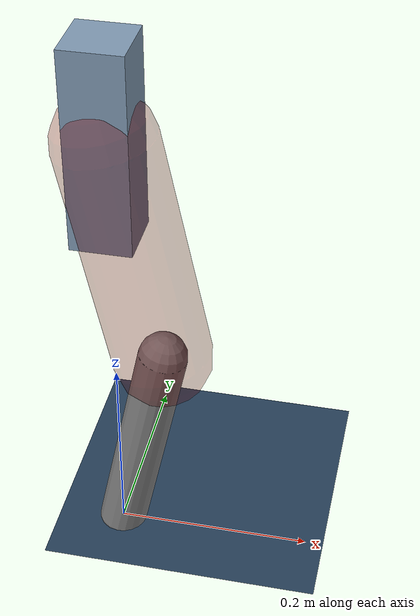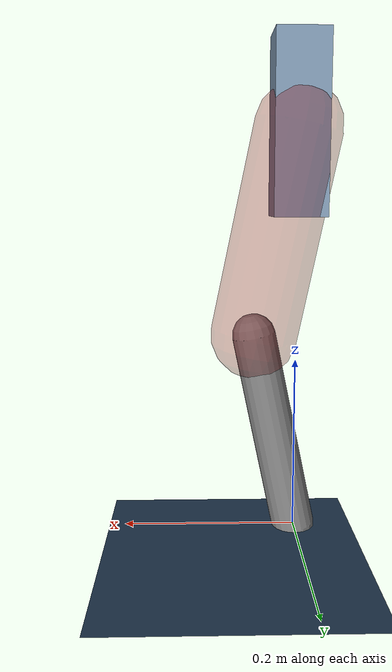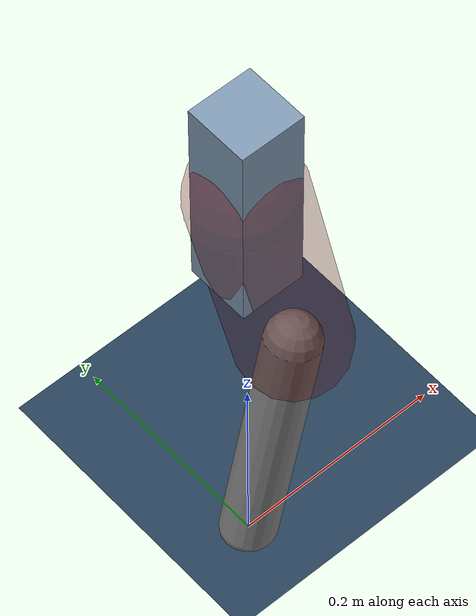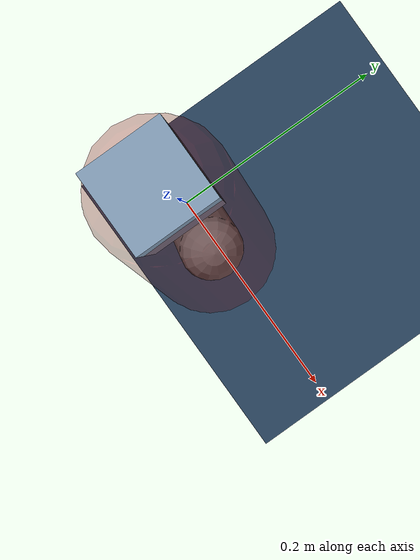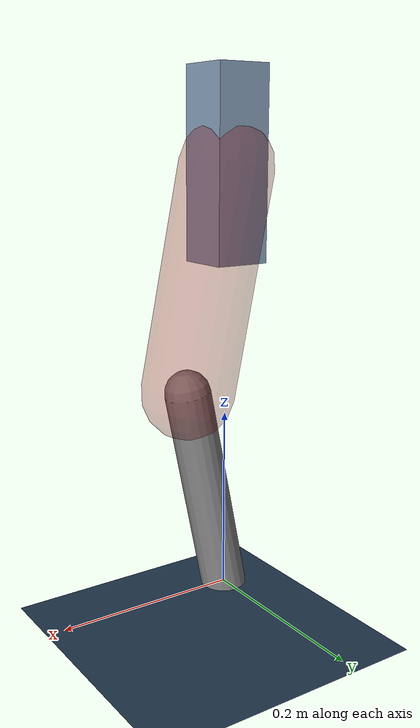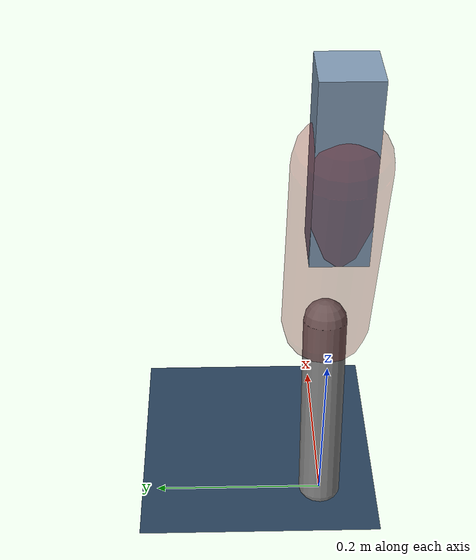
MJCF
<mujoco model="Hopper2D">
	<compiler inertiafromgeom="true" angle="radian" />
	<option timestep="0.001" integrator="implicit" cone="elliptic" solver="Newton" tolerance="1e-10" />

	<default>
		<geom contype="1" conaffinity="1" condim="3" friction="2 0.005 0.0001" solref="0.005 1" />
		<joint limited="true" damping="0.1" />
	</default>

	<asset>
		<texture name="skybox" type="skybox" builtin="gradient" rgb1=".4 .6 .8" rgb2="0 0 0" width="800" height="800" />
		<texture name="grid" type="2d" builtin="checker" rgb1=".1 .2 .3" rgb2=".2 .3 .4" width="300" height="300" mark="edge" markrgb=".2 .3 .4" />
		<material name="ground" texture="grid" texrepeat="1 1" texuniform="true" reflectance="0.1" />
		<material name="leg" rgba="0.5 0.6 0.7 1" />
	</asset>

	<worldbody>

		<geom name="floor" type="plane" size="5 5 0.25" material="ground" />

		<light directional="false" diffuse="0.8 0.8 0.8" specular="0.3 0.3 0.3" pos="0 0 2" dir="0 0 -1" />
		<light mode="targetbodycom" target="base" directional="false" diffuse="0.8 0.8 0.8" specular="0.3 0.3 0.3" pos="0 0 2" dir="0 0 -1" />

		<camera name="fixed" pos="0 -2 1" xyaxes="1 0 0 0 0 1" />
		<camera name="tracking" mode="trackcom" pos="0 -3 1" />

		<body name="root" pos="0 0 0.46624894867217426">
			<joint name="slide_x" type="slide" axis="1 0 0" range="-100 100" />
			<joint name="slide_z" type="slide" axis="0 0 1" range="0 10" />

			<body name="base" pos="0 0 0">
				<geom name="torso" type="box" size="0.03 0.03 0.1" mass="2.319" material="leg" />

				<body name="link1" pos="0 0 0" euler="0 1.3680378903028998 0">
					<joint type="hinge" axis="0 -1 0" pos="0 0 0" name="hinge1" limited="true" range="-3.14 3.14" stiffness="0" damping="0.1" />
					<geom name="thigh" type="capsule" fromto="0 0 0 0.24103341476286166 0 0" size="0.05" rgba="0.5 0 0 0.3" mass="0.8332835369071542" />

					<body name="link2" pos="0.24103341476286166 0 0" euler="0 0.4106045085441344 0">
						<joint type="hinge" axis="0 -1 0" pos="0 0 0" name="hinge2" limited="true" range="-3.14 3.14" stiffness="0" damping="0.1" />
						<geom name="shank" type="capsule" fromto="0 0 0 0.2352155339093126 0 0" size="0.025" mass="0.43029398051838136" />

					</body>
				</body>
			</body>
		</body>
	</worldbody>

	<actuator>
		<motor name="torque1" joint="hinge1" ctrlrange="-30.949951621899604 30.949951621899604" ctrllimited="true" gear="1" />
		<motor name="torque2" joint="hinge2" ctrlrange="-85.36136584799625 85.36136584799625" ctrllimited="true" gear="1" />
	</actuator>
</mujoco>
